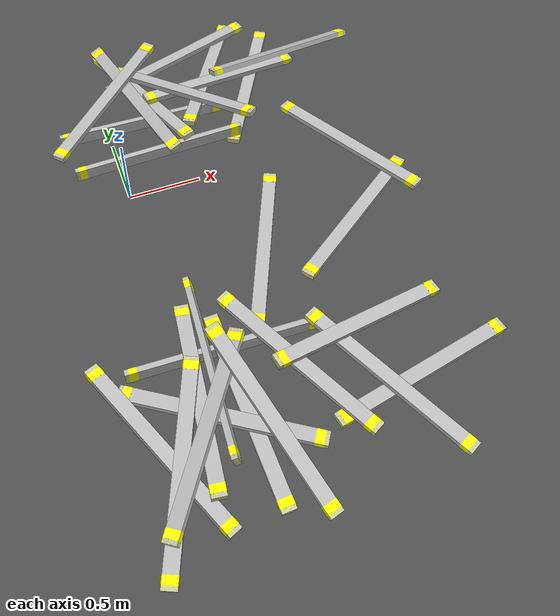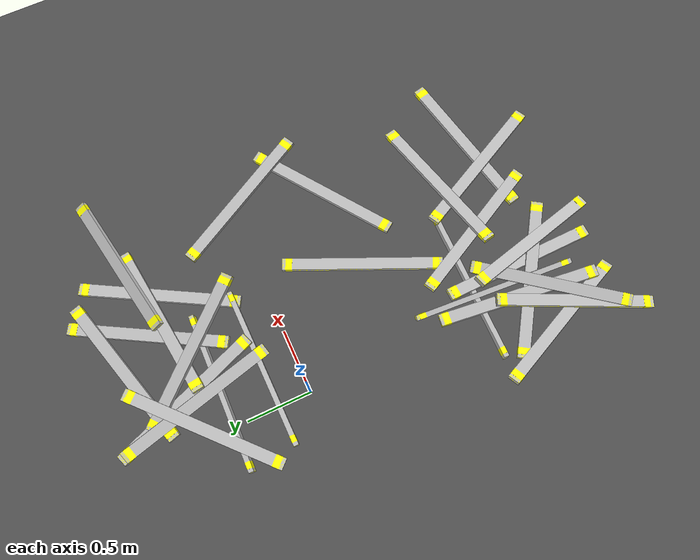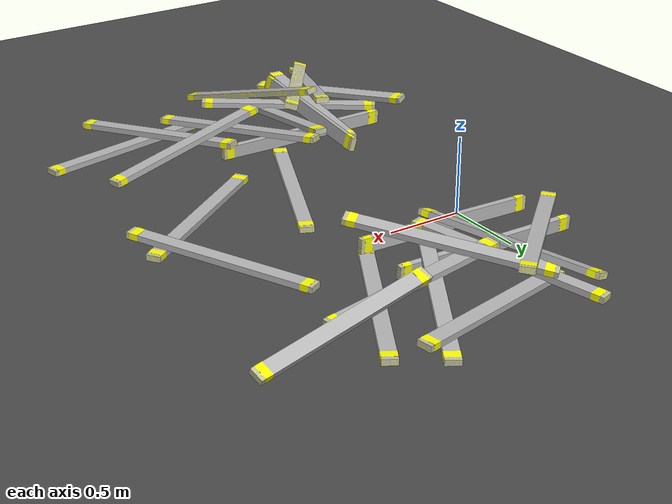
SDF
<sdf version="1.6">
 <world name="default">
  <model name="ground_plane">
   <static>1</static>
   <link name="link">
    <collision name="collision">
     <geometry><plane><normal>0 0 1</normal><size>100 100</size></plane></geometry>
     <surface><friction><ode><mu>100</mu><mu2>50</mu2></ode></friction></surface>
    </collision>
    <visual name="visual">
     <cast_shadows>0</cast_shadows>
     <geometry><plane><normal>0 0 1</normal><size>100 100</size></plane></geometry>
     <material>
      <script><uri>file://media/materials/scripts/gazebo.material</uri><name>Gazebo/Grey</name></script>
     </material>
    </visual>
   </link>
  </model>
  <model name="asphalt_plane">
   <static>1</static>
   <link name="link">
    <collision name="collision"><geometry><box><size>20 20 0.1</size></box></geometry></collision>
    <visual name="visual">
     <cast_shadows>0</cast_shadows>
     <geometry><box><size>20 20 0.1</size></box></geometry>
     <material>
      <script>
       <uri>model://asphalt_plane/materials/scripts</uri>
       <uri>model://asphalt_plane/materials/textures</uri>
       <name>vrc/asphalt</name>
      </script>
     </material>
    </visual>
   </link>
   <pose>0.013797 -0.037077 0 0 -0 0</pose>
  </model>
  <model name="lumber_2x4x48">
   <link name="link">
    <inertial>
     <mass>1.4111</mass>
     <inertia><ixx>0.0011</ixx><ixy>0</ixy><ixz>0</ixz><iyy>0.1771</iyy><iyz>0</iyz><izz>0.1763</izz></inertia>
    </inertial>
    <collision name="collision">
     <geometry><box><size>1.2192 0.038 0.0888</size></box></geometry>
     <surface>
      <bounce><restitution_coefficient>0.01</restitution_coefficient><threshold>5</threshold></bounce>
      <friction><ode><mu>5</mu><mu2>5</mu2></ode></friction>
      <contact>
       <ode>
        <soft_cfm>0.001</soft_cfm>
        <kp>10000</kp>
        <kd>1000</kd>
        <max_vel>0.01</max_vel>
        <min_depth>0.001</min_depth>
       </ode>
      </contact>
     </surface>
    </collision>
    <visual name="visual">
     <geometry><mesh><uri>model://drc_practice_2x4/meshes/2x4x48.dae</uri><scale>1 1 1</scale></mesh></geometry>
    </visual>
   </link>
   <pose>0.295943 0.24676 0.112066 -0.004289 -0.031399 0.006235</pose>
  </model>
  <model name="lumber_2x4x48_clone_1">
   <link name="link">
    <inertial>
     <mass>1.4111</mass>
     <inertia><ixx>0.0011</ixx><ixy>0</ixy><ixz>0</ixz><iyy>0.1771</iyy><iyz>0</iyz><izz>0.1763</izz></inertia>
    </inertial>
    <collision name="collision">
     <geometry><box><size>1.2192 0.038 0.0888</size></box></geometry>
     <surface>
      <bounce><restitution_coefficient>0.01</restitution_coefficient><threshold>5</threshold></bounce>
      <friction><ode><mu>5</mu><mu2>5</mu2></ode></friction>
      <contact>
       <ode>
        <soft_cfm>0.001</soft_cfm>
        <kp>10000</kp>
        <kd>1000</kd>
        <max_vel>0.01</max_vel>
        <min_depth>0.001</min_depth>
       </ode>
      </contact>
     </surface>
    </collision>
    <visual name="visual">
     <geometry><mesh><uri>model://drc_practice_2x4/meshes/2x4x48.dae</uri><scale>1 1 1</scale></mesh></geometry>
    </visual>
   </link>
   <pose>0.25963 0.583016 0.090657 -0.082566 1e-06 -0.018467</pose>
  </model>
  <model name="lumber_2x4x48_clone_3_clone_0">
   <link name="link">
    <inertial>
     <mass>1.4111</mass>
     <inertia><ixx>0.0011</ixx><ixy>0</ixy><ixz>0</ixz><iyy>0.1771</iyy><iyz>0</iyz><izz>0.1763</izz></inertia>
    </inertial>
    <collision name="collision">
     <geometry><box><size>1.2192 0.038 0.0888</size></box></geometry>
     <surface>
      <bounce><restitution_coefficient>0.01</restitution_coefficient><threshold>5</threshold></bounce>
      <friction><ode><mu>5</mu><mu2>5</mu2></ode></friction>
      <contact>
       <ode>
        <soft_cfm>0.001</soft_cfm>
        <kp>10000</kp>
        <kd>1000</kd>
        <max_vel>0.01</max_vel>
        <min_depth>0.001</min_depth>
       </ode>
      </contact>
     </surface>
    </collision>
    <visual name="visual">
     <geometry><mesh><uri>model://drc_practice_2x4/meshes/2x4x48.dae</uri><scale>1 1 1</scale></mesh></geometry>
    </visual>
   </link>
   <pose>0.046527 0.776023 0.217541 1.53066 -0.084857 0.740118</pose>
  </model>
  <model name="lumber_2x4x48_clone_3_clone_0_clone_0_clone_0">
   <link name="link">
    <inertial>
     <mass>1.4111</mass>
     <inertia><ixx>0.0011</ixx><ixy>0</ixy><ixz>0</ixz><iyy>0.1771</iyy><iyz>0</iyz><izz>0.1763</izz></inertia>
    </inertial>
    <collision name="collision">
     <geometry><box><size>1.2192 0.038 0.0888</size></box></geometry>
     <surface>
      <bounce><restitution_coefficient>0.01</restitution_coefficient><threshold>5</threshold></bounce>
      <friction><ode><mu>5</mu><mu2>5</mu2></ode></friction>
      <contact>
       <ode>
        <soft_cfm>0.001</soft_cfm>
        <kp>10000</kp>
        <kd>1000</kd>
        <max_vel>0.01</max_vel>
        <min_depth>0.001</min_depth>
       </ode>
      </contact>
     </surface>
    </collision>
    <visual name="visual">
     <geometry><mesh><uri>model://drc_practice_2x4/meshes/2x4x48.dae</uri><scale>1 1 1</scale></mesh></geometry>
    </visual>
   </link>
   <pose>0.065536 -1.82373 0.145604 1.59782 0.015954 2.55981</pose>
  </model>
  <model name="lumber_2x4x48_clone_0_clone_0">
   <link name="link">
    <inertial>
     <mass>1.4111</mass>
     <inertia><ixx>0.0011</ixx><ixy>0</ixy><ixz>0</ixz><iyy>0.1771</iyy><iyz>0</iyz><izz>0.1763</izz></inertia>
    </inertial>
    <collision name="collision">
     <geometry><box><size>1.2192 0.038 0.0888</size></box></geometry>
     <surface>
      <bounce><restitution_coefficient>0.01</restitution_coefficient><threshold>5</threshold></bounce>
      <friction><ode><mu>5</mu><mu2>5</mu2></ode></friction>
      <contact>
       <ode>
        <soft_cfm>0.001</soft_cfm>
        <kp>10000</kp>
        <kd>1000</kd>
        <max_vel>0.01</max_vel>
        <min_depth>0.001</min_depth>
       </ode>
      </contact>
     </surface>
    </collision>
    <visual name="visual">
     <geometry><mesh><uri>model://drc_practice_2x4/meshes/2x4x48.dae</uri><scale>1 1 1</scale></mesh></geometry>
    </visual>
   </link>
   <pose>0.226346 -1.4005 0.0985 -0.046958 0.012407 -0.0204</pose>
  </model>
  <model name="lumber_2x4x48_clone_3_clone_0_clone_1_clone_clone">
   <link name="link">
    <inertial>
     <mass>1.4111</mass>
     <inertia><ixx>0.0011</ixx><ixy>0</ixy><ixz>0</ixz><iyy>0.1771</iyy><iyz>0</iyz><izz>0.1763</izz></inertia>
    </inertial>
    <collision name="collision">
     <geometry><box><size>1.2192 0.038 0.0888</size></box></geometry>
     <surface>
      <bounce><restitution_coefficient>0.01</restitution_coefficient><threshold>5</threshold></bounce>
      <friction><ode><mu>5</mu><mu2>5</mu2></ode></friction>
      <contact>
       <ode>
        <soft_cfm>0.001</soft_cfm>
        <kp>10000</kp>
        <kd>1000</kd>
        <max_vel>0.01</max_vel>
        <min_depth>0.001</min_depth>
       </ode>
      </contact>
     </surface>
    </collision>
    <visual name="visual">
     <geometry><mesh><uri>model://drc_practice_2x4/meshes/2x4x48.dae</uri><scale>1 1 1</scale></mesh></geometry>
    </visual>
   </link>
   <pose>0.097343 -1.51933 0.194578 -0.241895 0.040257 1.49351</pose>
  </model>
  <model name="lumber_2x4x48_clone_3_clone_0_clone_clone_0">
   <link name="link">
    <inertial>
     <mass>1.4111</mass>
     <inertia><ixx>0.0011</ixx><ixy>0</ixy><ixz>0</ixz><iyy>0.1771</iyy><iyz>0</iyz><izz>0.1763</izz></inertia>
    </inertial>
    <collision name="collision">
     <geometry><box><size>1.2192 0.038 0.0888</size></box></geometry>
     <surface>
      <bounce><restitution_coefficient>0.01</restitution_coefficient><threshold>5</threshold></bounce>
      <friction><ode><mu>5</mu><mu2>5</mu2></ode></friction>
      <contact>
       <ode>
        <soft_cfm>0.001</soft_cfm>
        <kp>10000</kp>
        <kd>1000</kd>
        <max_vel>0.01</max_vel>
        <min_depth>0.001</min_depth>
       </ode>
      </contact>
     </surface>
    </collision>
    <visual name="visual">
     <geometry><mesh><uri>model://drc_practice_2x4/meshes/2x4x48.dae</uri><scale>1 1 1</scale></mesh></geometry>
    </visual>
   </link>
   <pose>1.39218 -0.712527 0.067433 1.56621 0.000289 0.613644</pose>
  </model>
  <model name="lumber_2x4x48_clone_3_clone_0_clone_1_clone_0">
   <link name="link">
    <inertial>
     <mass>1.4111</mass>
     <inertia><ixx>0.0011</ixx><ixy>0</ixy><ixz>0</ixz><iyy>0.1771</iyy><iyz>0</iyz><izz>0.1763</izz></inertia>
    </inertial>
    <collision name="collision">
     <geometry><box><size>1.2192 0.038 0.0888</size></box></geometry>
     <surface>
      <bounce><restitution_coefficient>0.01</restitution_coefficient><threshold>5</threshold></bounce>
      <friction><ode><mu>5</mu><mu2>5</mu2></ode></friction>
      <contact>
       <ode>
        <soft_cfm>0.001</soft_cfm>
        <kp>10000</kp>
        <kd>1000</kd>
        <max_vel>0.01</max_vel>
        <min_depth>0.001</min_depth>
       </ode>
      </contact>
     </surface>
    </collision>
    <visual name="visual">
     <geometry><mesh><uri>model://drc_practice_2x4/meshes/2x4x48.dae</uri><scale>1 1 1</scale></mesh></geometry>
    </visual>
   </link>
   <pose>0.249948 0.757668 0.190049 1.2699 -0.004848 1.81905</pose>
  </model>
  <model name="lumber_2x4x48_clone_3_clone_0_clone_1_clone_1">
   <link name="link">
    <inertial>
     <mass>1.4111</mass>
     <inertia><ixx>0.0011</ixx><ixy>0</ixy><ixz>0</ixz><iyy>0.1771</iyy><iyz>0</iyz><izz>0.1763</izz></inertia>
    </inertial>
    <collision name="collision">
     <geometry><box><size>1.2192 0.038 0.0888</size></box></geometry>
     <surface>
      <bounce><restitution_coefficient>0.01</restitution_coefficient><threshold>5</threshold></bounce>
      <friction><ode><mu>5</mu><mu2>5</mu2></ode></friction>
      <contact>
       <ode>
        <soft_cfm>0.001</soft_cfm>
        <kp>10000</kp>
        <kd>1000</kd>
        <max_vel>0.01</max_vel>
        <min_depth>0.001</min_depth>
       </ode>
      </contact>
     </surface>
    </collision>
    <visual name="visual">
     <geometry><mesh><uri>model://drc_practice_2x4/meshes/2x4x48.dae</uri><scale>1 1 1</scale></mesh></geometry>
    </visual>
   </link>
   <pose>-0.020073 -1.67145 0.175733 -1.57493 -0.044952 -1.69555</pose>
  </model>
  <model name="lumber_2x4x48_clone_3_clone_0_clone_1_clone_2">
   <link name="link">
    <inertial>
     <mass>1.4111</mass>
     <inertia><ixx>0.0011</ixx><ixy>0</ixy><ixz>0</ixz><iyy>0.1771</iyy><iyz>0</iyz><izz>0.1763</izz></inertia>
    </inertial>
    <collision name="collision">
     <geometry><box><size>1.2192 0.038 0.0888</size></box></geometry>
     <surface>
      <bounce><restitution_coefficient>0.01</restitution_coefficient><threshold>5</threshold></bounce>
      <friction><ode><mu>5</mu><mu2>5</mu2></ode></friction>
      <contact>
       <ode>
        <soft_cfm>0.001</soft_cfm>
        <kp>10000</kp>
        <kd>1000</kd>
        <max_vel>0.01</max_vel>
        <min_depth>0.001</min_depth>
       </ode>
      </contact>
     </surface>
    </collision>
    <visual name="visual">
     <geometry><mesh><uri>model://drc_practice_2x4/meshes/2x4x48.dae</uri><scale>1 1 1</scale></mesh></geometry>
    </visual>
   </link>
   <pose>0.218585 -1.81775 0.120534 -1.55692 0.088529 -1.5357</pose>
  </model>
  <model name="lumber_2x4x48_clone_3_clone_0_clone_clone_0_clone_0_clone">
   <link name="link">
    <inertial>
     <mass>1.4111</mass>
     <inertia><ixx>0.0011</ixx><ixy>0</ixy><ixz>0</ixz><iyy>0.1771</iyy><iyz>0</iyz><izz>0.1763</izz></inertia>
    </inertial>
    <collision name="collision">
     <geometry><box><size>1.2192 0.038 0.0888</size></box></geometry>
     <surface>
      <bounce><restitution_coefficient>0.01</restitution_coefficient><threshold>5</threshold></bounce>
      <friction><ode><mu>5</mu><mu2>5</mu2></ode></friction>
      <contact>
       <ode>
        <soft_cfm>0.001</soft_cfm>
        <kp>10000</kp>
        <kd>1000</kd>
        <max_vel>0.01</max_vel>
        <min_depth>0.001</min_depth>
       </ode>
      </contact>
     </surface>
    </collision>
    <visual name="visual">
     <geometry><mesh><uri>model://drc_practice_2x4/meshes/2x4x48.dae</uri><scale>1 1 1</scale></mesh></geometry>
    </visual>
   </link>
   <pose>0.590379 0.660827 0.229847 -1.72817 -0.132629 -0.862861</pose>
  </model>
  <model name="lumber_2x4x48_clone_3_clone_0_clone_clone_0_clone_0_clone_0">
   <link name="link">
    <inertial>
     <mass>1.4111</mass>
     <inertia><ixx>0.0011</ixx><ixy>0</ixy><ixz>0</ixz><iyy>0.1771</iyy><iyz>0</iyz><izz>0.1763</izz></inertia>
    </inertial>
    <collision name="collision">
     <geometry><box><size>1.2192 0.038 0.0888</size></box></geometry>
     <surface>
      <bounce><restitution_coefficient>0.01</restitution_coefficient><threshold>5</threshold></bounce>
      <friction><ode><mu>5</mu><mu2>5</mu2></ode></friction>
      <contact>
       <ode>
        <soft_cfm>0.001</soft_cfm>
        <kp>10000</kp>
        <kd>1000</kd>
        <max_vel>0.01</max_vel>
        <min_depth>0.001</min_depth>
       </ode>
      </contact>
     </surface>
    </collision>
    <visual name="visual">
     <geometry><mesh><uri>model://drc_practice_2x4/meshes/2x4x48.dae</uri><scale>1 1 1</scale></mesh></geometry>
    </visual>
   </link>
   <pose>0.30857 -1.95932 0.232786 -1.57978 0.274586 -1.29411</pose>
  </model>
  <model name="lumber_2x4x48_clone_3_clone_0_clone_clone_0_clone_0_clone_4">
   <link name="link">
    <inertial>
     <mass>1.4111</mass>
     <inertia><ixx>0.0011</ixx><ixy>0</ixy><ixz>0</ixz><iyy>0.1771</iyy><iyz>0</iyz><izz>0.1763</izz></inertia>
    </inertial>
    <collision name="collision">
     <geometry><box><size>1.2192 0.038 0.0888</size></box></geometry>
     <surface>
      <bounce><restitution_coefficient>0.01</restitution_coefficient><threshold>5</threshold></bounce>
      <friction><ode><mu>5</mu><mu2>5</mu2></ode></friction>
      <contact>
       <ode>
        <soft_cfm>0.001</soft_cfm>
        <kp>10000</kp>
        <kd>1000</kd>
        <max_vel>0.01</max_vel>
        <min_depth>0.001</min_depth>
       </ode>
      </contact>
     </surface>
    </collision>
    <visual name="visual">
     <geometry><mesh><uri>model://drc_practice_2x4/meshes/2x4x48.dae</uri><scale>1 1 1</scale></mesh></geometry>
    </visual>
   </link>
   <pose>1.05598 -1.91133 0.11252 -1.57651 0.073753 -1.09333</pose>
  </model>
  <model name="lumber_2x4x48_clone_3_clone_0_clone_clone_0_clone_0_clone_5">
   <link name="link">
    <inertial>
     <mass>1.4111</mass>
     <inertia><ixx>0.0011</ixx><ixy>0</ixy><ixz>0</ixz><iyy>0.1771</iyy><iyz>0</iyz><izz>0.1763</izz></inertia>
    </inertial>
    <collision name="collision">
     <geometry><box><size>1.2192 0.038 0.0888</size></box></geometry>
     <surface>
      <bounce><restitution_coefficient>0.01</restitution_coefficient><threshold>5</threshold></bounce>
      <friction><ode><mu>5</mu><mu2>5</mu2></ode></friction>
      <contact>
       <ode>
        <soft_cfm>0.001</soft_cfm>
        <kp>10000</kp>
        <kd>1000</kd>
        <max_vel>0.01</max_vel>
        <min_depth>0.001</min_depth>
       </ode>
      </contact>
     </surface>
    </collision>
    <visual name="visual">
     <geometry><mesh><uri>model://drc_practice_2x4/meshes/2x4x48.dae</uri><scale>1 1 1</scale></mesh></geometry>
    </visual>
   </link>
   <pose>1.59701 -0.113235 0.090622 -1.56748 -0.037512 -1.0825</pose>
  </model>
  <model name="lumber_2x4x48_clone_3_clone_0_clone_clone_0_clone_0_clone_8">
   <link name="link">
    <inertial>
     <mass>1.4111</mass>
     <inertia><ixx>0.0011</ixx><ixy>0</ixy><ixz>0</ixz><iyy>0.1771</iyy><iyz>0</iyz><izz>0.1763</izz></inertia>
    </inertial>
    <collision name="collision">
     <geometry><box><size>1.2192 0.038 0.0888</size></box></geometry>
     <surface>
      <bounce><restitution_coefficient>0.01</restitution_coefficient><threshold>5</threshold></bounce>
      <friction><ode><mu>5</mu><mu2>5</mu2></ode></friction>
      <contact>
       <ode>
        <soft_cfm>0.001</soft_cfm>
        <kp>10000</kp>
        <kd>1000</kd>
        <max_vel>0.01</max_vel>
        <min_depth>0.001</min_depth>
       </ode>
      </contact>
     </surface>
    </collision>
    <visual name="visual">
     <geometry><mesh><uri>model://drc_practice_2x4/meshes/2x4x48.dae</uri><scale>1 1 1</scale></mesh></geometry>
    </visual>
   </link>
   <pose>0.591068 -1.63669 0.139251 1.59756 0.074439 -1.08352</pose>
  </model>
  <model name="lumber_2x4x48_clone_3_clone_0_clone_clone_0_clone_0_clone_0_clone_0">
   <link name="link">
    <inertial>
     <mass>1.4111</mass>
     <inertia><ixx>0.0011</ixx><ixy>0</ixy><ixz>0</ixz><iyy>0.1771</iyy><iyz>0</iyz><izz>0.1763</izz></inertia>
    </inertial>
    <collision name="collision">
     <geometry><box><size>1.2192 0.038 0.0888</size></box></geometry>
     <surface>
      <bounce><restitution_coefficient>0.01</restitution_coefficient><threshold>5</threshold></bounce>
      <friction><ode><mu>5</mu><mu2>5</mu2></ode></friction>
      <contact>
       <ode>
        <soft_cfm>0.001</soft_cfm>
        <kp>10000</kp>
        <kd>1000</kd>
        <max_vel>0.01</max_vel>
        <min_depth>0.001</min_depth>
       </ode>
      </contact>
     </surface>
    </collision>
    <visual name="visual">
     <geometry><mesh><uri>model://drc_practice_2x4/meshes/2x4x48.dae</uri><scale>1 1 1</scale></mesh></geometry>
    </visual>
   </link>
   <pose>-0.312295 -1.88186 0.143595 -1.71761 0.1144 -1.15085</pose>
  </model>
  <model name="lumber_2x4x48_clone_3_clone_0_clone_clone_0_clone_0_clone_10">
   <link name="link">
    <inertial>
     <mass>1.4111</mass>
     <inertia><ixx>0.0011</ixx><ixy>0</ixy><ixz>0</ixz><iyy>0.1771</iyy><iyz>0</iyz><izz>0.1763</izz></inertia>
    </inertial>
    <collision name="collision">
     <geometry><box><size>1.2192 0.038 0.0888</size></box></geometry>
     <surface>
      <bounce><restitution_coefficient>0.01</restitution_coefficient><threshold>5</threshold></bounce>
      <friction><ode><mu>5</mu><mu2>5</mu2></ode></friction>
      <contact>
       <ode>
        <soft_cfm>0.001</soft_cfm>
        <kp>10000</kp>
        <kd>1000</kd>
        <max_vel>0.01</max_vel>
        <min_depth>0.001</min_depth>
       </ode>
      </contact>
     </surface>
    </collision>
    <visual name="visual">
     <geometry><mesh><uri>model://drc_practice_2x4/meshes/2x4x48.dae</uri><scale>1 1 1</scale></mesh></geometry>
    </visual>
   </link>
   <pose>0.313142 0.825462 0.13302 -1.54359 -0.082532 -1.22147</pose>
  </model>
  <model name="lumber_2x4x48_clone_3_clone_0_clone_clone_0_clone_0_clone_11">
   <link name="link">
    <inertial>
     <mass>1.4111</mass>
     <inertia><ixx>0.0011</ixx><ixy>0</ixy><ixz>0</ixz><iyy>0.1771</iyy><iyz>0</iyz><izz>0.1763</izz></inertia>
    </inertial>
    <collision name="collision">
     <geometry><box><size>1.2192 0.038 0.0888</size></box></geometry>
     <surface>
      <bounce><restitution_coefficient>0.01</restitution_coefficient><threshold>5</threshold></bounce>
      <friction><ode><mu>5</mu><mu2>5</mu2></ode></friction>
      <contact>
       <ode>
        <soft_cfm>0.001</soft_cfm>
        <kp>10000</kp>
        <kd>1000</kd>
        <max_vel>0.01</max_vel>
        <min_depth>0.001</min_depth>
       </ode>
      </contact>
     </surface>
    </collision>
    <visual name="visual">
     <geometry><mesh><uri>model://drc_practice_2x4/meshes/2x4x48.dae</uri><scale>1 1 1</scale></mesh></geometry>
    </visual>
   </link>
   <pose>-0.232226 -2.03483 0.172006 1.56505 0.161367 -1.97533</pose>
  </model>
  <model name="lumber_2x4x48_clone_3_clone_0_clone_clone_0_clone_0_clone_11_clone">
   <link name="link">
    <inertial>
     <mass>1.4111</mass>
     <inertia><ixx>0.0011</ixx><ixy>0</ixy><ixz>0</ixz><iyy>0.1771</iyy><iyz>0</iyz><izz>0.1763</izz></inertia>
    </inertial>
    <collision name="collision">
     <geometry><box><size>1.2192 0.038 0.0888</size></box></geometry>
     <surface>
      <bounce><restitution_coefficient>0.01</restitution_coefficient><threshold>5</threshold></bounce>
      <friction><ode><mu>5</mu><mu2>5</mu2></ode></friction>
      <contact>
       <ode>
        <soft_cfm>0.001</soft_cfm>
        <kp>10000</kp>
        <kd>1000</kd>
        <max_vel>0.01</max_vel>
        <min_depth>0.001</min_depth>
       </ode>
      </contact>
     </surface>
    </collision>
    <visual name="visual">
     <geometry><mesh><uri>model://drc_practice_2x4/meshes/2x4x48.dae</uri><scale>1 1 1</scale></mesh></geometry>
    </visual>
   </link>
   <pose>-0.05104 -1.91136 0.241658 1.81987 0.107296 -2.19021</pose>
  </model>
  <model name="lumber_2x4x48_clone_3_clone_0_clone_clone_0_clone_0_clone_11_clone_11">
   <link name="link">
    <inertial>
     <mass>1.4111</mass>
     <inertia><ixx>0.0011</ixx><ixy>0</ixy><ixz>0</ixz><iyy>0.1771</iyy><iyz>0</iyz><izz>0.1763</izz></inertia>
    </inertial>
    <collision name="collision">
     <geometry><box><size>1.2192 0.038 0.0888</size></box></geometry>
     <surface>
      <bounce><restitution_coefficient>0.01</restitution_coefficient><threshold>5</threshold></bounce>
      <friction><ode><mu>5</mu><mu2>5</mu2></ode></friction>
      <contact>
       <ode>
        <soft_cfm>0.001</soft_cfm>
        <kp>10000</kp>
        <kd>1000</kd>
        <max_vel>0.01</max_vel>
        <min_depth>0.001</min_depth>
       </ode>
      </contact>
     </surface>
    </collision>
    <visual name="visual">
     <geometry><mesh><uri>model://drc_practice_2x4/meshes/2x4x48.dae</uri><scale>1 1 1</scale></mesh></geometry>
    </visual>
   </link>
   <pose>0.866122 0.915786 0.114854 1.58708 -0.079071 -2.10401</pose>
  </model>
  <model name="lumber_2x4x48_clone_3_clone_0_clone_clone_0_clone_0_clone_11_clone_12">
   <link name="link">
    <inertial>
     <mass>1.4111</mass>
     <inertia><ixx>0.0011</ixx><ixy>0</ixy><ixz>0</ixz><iyy>0.1771</iyy><iyz>0</iyz><izz>0.1763</izz></inertia>
    </inertial>
    <collision name="collision">
     <geometry><box><size>1.2192 0.038 0.0888</size></box></geometry>
     <surface>
      <bounce><restitution_coefficient>0.01</restitution_coefficient><threshold>5</threshold></bounce>
      <friction><ode><mu>5</mu><mu2>5</mu2></ode></friction>
      <contact>
       <ode>
        <soft_cfm>0.001</soft_cfm>
        <kp>10000</kp>
        <kd>1000</kd>
        <max_vel>0.01</max_vel>
        <min_depth>0.001</min_depth>
       </ode>
      </contact>
     </surface>
    </collision>
    <visual name="visual">
     <geometry><mesh><uri>model://drc_practice_2x4/meshes/2x4x48.dae</uri><scale>1 1 1</scale></mesh></geometry>
    </visual>
   </link>
   <pose>1.13101 0.733787 0.067366 1.57698 0.000452 -2.08468</pose>
  </model>
  <model name="lumber_2x4x48_clone_3_clone_0_clone_clone_0_clone_0_clone_11_clone_13">
   <link name="link">
    <inertial>
     <mass>1.4111</mass>
     <inertia><ixx>0.0011</ixx><ixy>0</ixy><ixz>0</ixz><iyy>0.1771</iyy><iyz>0</iyz><izz>0.1763</izz></inertia>
    </inertial>
    <collision name="collision">
     <geometry><box><size>1.2192 0.038 0.0888</size></box></geometry>
     <surface>
      <bounce><restitution_coefficient>0.01</restitution_coefficient><threshold>5</threshold></bounce>
      <friction><ode><mu>5</mu><mu2>5</mu2></ode></friction>
      <contact>
       <ode>
        <soft_cfm>0.001</soft_cfm>
        <kp>10000</kp>
        <kd>1000</kd>
        <max_vel>0.01</max_vel>
        <min_depth>0.001</min_depth>
       </ode>
      </contact>
     </surface>
    </collision>
    <visual name="visual">
     <geometry><mesh><uri>model://drc_practice_2x4/meshes/2x4x48.dae</uri><scale>1 1 1</scale></mesh></geometry>
    </visual>
   </link>
   <pose>0.717006 -0.749436 0.067655 1.5708 -0 -1.99454</pose>
  </model>
  <model name="lumber_2x4x48_clone_3_clone_0_clone_clone_0_clone_0_clone_11_clone_14_clone_clone">
   <link name="link">
    <inertial>
     <mass>1.4111</mass>
     <inertia><ixx>0.0011</ixx><ixy>0</ixy><ixz>0</ixz><iyy>0.1771</iyy><iyz>0</iyz><izz>0.1763</izz></inertia>
    </inertial>
    <collision name="collision">
     <geometry><box><size>1.2192 0.038 0.0888</size></box></geometry>
     <surface>
      <bounce><restitution_coefficient>0.01</restitution_coefficient><threshold>5</threshold></bounce>
      <friction><ode><mu>5</mu><mu2>5</mu2></ode></friction>
      <contact>
       <ode>
        <soft_cfm>0.001</soft_cfm>
        <kp>10000</kp>
        <kd>1000</kd>
        <max_vel>0.01</max_vel>
        <min_depth>0.001</min_depth>
       </ode>
      </contact>
     </surface>
    </collision>
    <visual name="visual">
     <geometry><mesh><uri>model://drc_practice_2x4/meshes/2x4x48.dae</uri><scale>1 1 1</scale></mesh></geometry>
    </visual>
   </link>
   <pose>1.2812 -1.92014 0.067467 1.56306 0.000201 -2.93905</pose>
  </model>
  <model name="lumber_2x4x48_clone_3_clone_0_clone_clone_0_clone_0_clone_11_clone_14_clone_clone_0">
   <link name="link">
    <inertial>
     <mass>1.4111</mass>
     <inertia><ixx>0.0011</ixx><ixy>0</ixy><ixz>0</ixz><iyy>0.1771</iyy><iyz>0</iyz><izz>0.1763</izz></inertia>
    </inertial>
    <collision name="collision">
     <geometry><box><size>1.2192 0.038 0.0888</size></box></geometry>
     <surface>
      <bounce><restitution_coefficient>0.01</restitution_coefficient><threshold>5</threshold></bounce>
      <friction><ode><mu>5</mu><mu2>5</mu2></ode></friction>
      <contact>
       <ode>
        <soft_cfm>0.001</soft_cfm>
        <kp>10000</kp>
        <kd>1000</kd>
        <max_vel>0.01</max_vel>
        <min_depth>0.001</min_depth>
       </ode>
      </contact>
     </surface>
    </collision>
    <visual name="visual">
     <geometry><mesh><uri>model://drc_practice_2x4/meshes/2x4x48.dae</uri><scale>1 1 1</scale></mesh></geometry>
    </visual>
   </link>
   <pose>0.685489 1.16594 0.104366 1.64839 0.05698 -2.87421</pose>
  </model>
  <model name="lumber_2x4x48_clone_3_clone_0_clone_clone_0_clone_0_clone_11_clone_14_clone_clone_1">
   <link name="link">
    <inertial>
     <mass>1.4111</mass>
     <inertia><ixx>0.0011</ixx><ixy>0</ixy><ixz>0</ixz><iyy>0.1771</iyy><iyz>0</iyz><izz>0.1763</izz></inertia>
    </inertial>
    <collision name="collision">
     <geometry><box><size>1.2192 0.038 0.0888</size></box></geometry>
     <surface>
      <bounce><restitution_coefficient>0.01</restitution_coefficient><threshold>5</threshold></bounce>
      <friction><ode><mu>5</mu><mu2>5</mu2></ode></friction>
      <contact>
       <ode>
        <soft_cfm>0.001</soft_cfm>
        <kp>10000</kp>
        <kd>1000</kd>
        <max_vel>0.01</max_vel>
        <min_depth>0.001</min_depth>
       </ode>
      </contact>
     </surface>
    </collision>
    <visual name="visual">
     <geometry><mesh><uri>model://drc_practice_2x4/meshes/2x4x48.dae</uri><scale>1 1 1</scale></mesh></geometry>
    </visual>
   </link>
   <pose>0.923577 0.789046 0.150242 1.62345 -0.062212 -3.01521</pose>
  </model>
  <model name="lumber_2x4x48_clone_3_clone_0_clone_clone_0_clone_0_clone_11_clone_14_clone_clone_6">
   <link name="link">
    <inertial>
     <mass>1.4111</mass>
     <inertia><ixx>0.0011</ixx><ixy>0</ixy><ixz>0</ixz><iyy>0.1771</iyy><iyz>0</iyz><izz>0.1763</izz></inertia>
    </inertial>
    <collision name="collision">
     <geometry><box><size>1.2192 0.038 0.0888</size></box></geometry>
     <surface>
      <bounce><restitution_coefficient>0.01</restitution_coefficient><threshold>5</threshold></bounce>
      <friction><ode><mu>5</mu><mu2>5</mu2></ode></friction>
      <contact>
       <ode>
        <soft_cfm>0.001</soft_cfm>
        <kp>10000</kp>
        <kd>1000</kd>
        <max_vel>0.01</max_vel>
        <min_depth>0.001</min_depth>
       </ode>
      </contact>
     </surface>
    </collision>
    <visual name="visual">
     <geometry><mesh><uri>model://drc_practice_2x4/meshes/2x4x48.dae</uri><scale>1 1 1</scale></mesh></geometry>
    </visual>
   </link>
   <pose>1.03446 -1.53891 0.158905 1.53659 -0.147877 -2.93568</pose>
  </model>
  <model name="lumber_2x4x48_clone_3_clone_0_clone_clone_0_clone_0_clone_11_clone_14_clone_clone_7">
   <link name="link">
    <inertial>
     <mass>1.4111</mass>
     <inertia><ixx>0.0011</ixx><ixy>0</ixy><ixz>0</ixz><iyy>0.1771</iyy><iyz>0</iyz><izz>0.1763</izz></inertia>
    </inertial>
    <collision name="collision">
     <geometry><box><size>1.2192 0.038 0.0888</size></box></geometry>
     <surface>
      <bounce><restitution_coefficient>0.01</restitution_coefficient><threshold>5</threshold></bounce>
      <friction><ode><mu>5</mu><mu2>5</mu2></ode></friction>
      <contact>
       <ode>
        <soft_cfm>0.001</soft_cfm>
        <kp>10000</kp>
        <kd>1000</kd>
        <max_vel>0.01</max_vel>
        <min_depth>0.001</min_depth>
       </ode>
      </contact>
     </surface>
    </collision>
    <visual name="visual">
     <geometry><mesh><uri>model://drc_practice_2x4/meshes/2x4x48.dae</uri><scale>1 1 1</scale></mesh></geometry>
    </visual>
   </link>
   <pose>1.46627 0.926719 0.140063 2.00355 -0.091459 -2.9547</pose>
  </model>
 </world>
</sdf>
